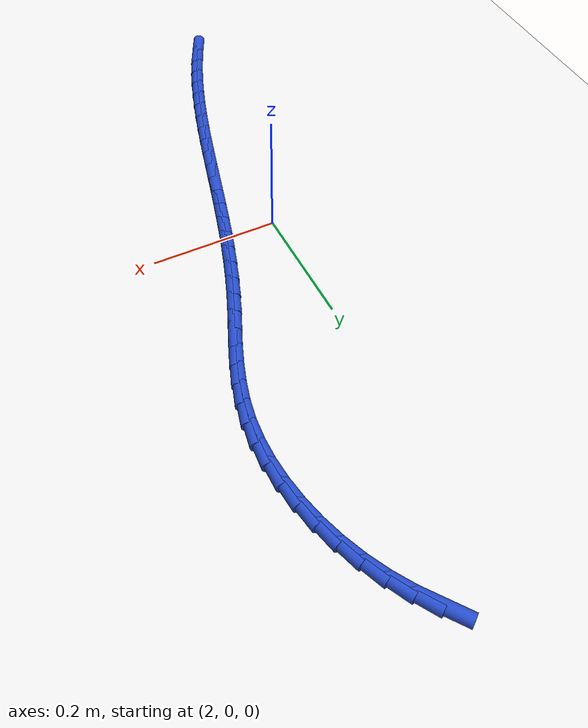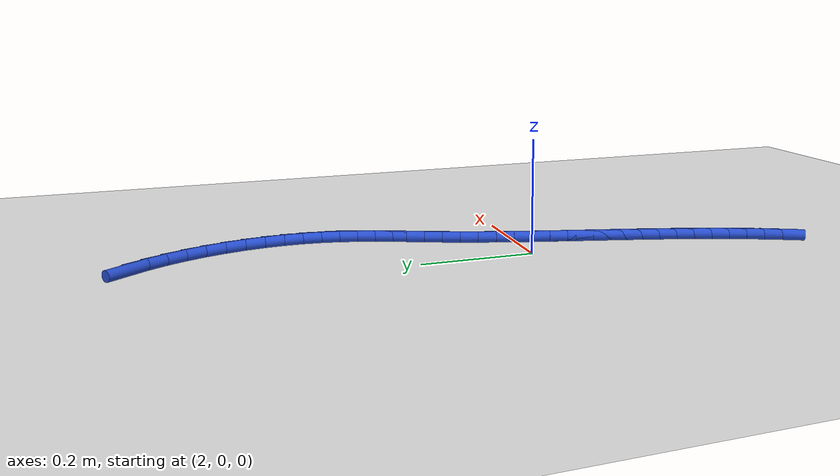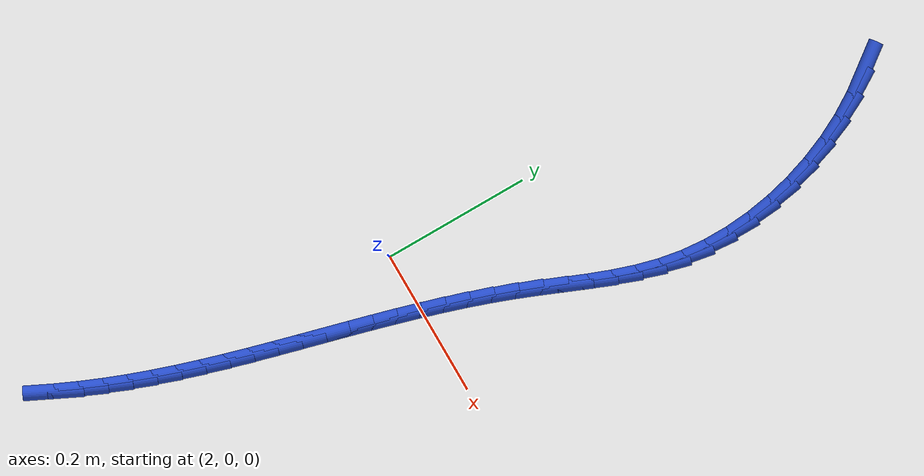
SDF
<sdf version="1.6">
 <world name="default">
  <model name="ground_plane">
   <static>1</static>
   <link name="link">
    <collision name="collision">
     <geometry><plane><normal>0 0 1</normal><size>100 100</size></plane></geometry>
     <surface><friction><ode><mu>100</mu><mu2>50</mu2></ode></friction></surface>
    </collision>
    <visual name="visual">
     <cast_shadows>0</cast_shadows>
     <geometry><plane><normal>0 0 1</normal><size>100 100</size></plane></geometry>
     <material>
      <script><uri>file://media/materials/scripts/gazebo.material</uri><name>Gazebo/WhiteGlow</name></script>
     </material>
    </visual>
   </link>
  </model>
  <model name="line">
   <link name="link_93">
    <pose>2.099813220663158 0.6564636988015781 0.01 0 1.57 -0.9283039802490364</pose>
    <collision name="collision">
     <geometry><cylinder><radius>0.01</radius><length>0.08</length></cylinder></geometry>
    </collision>
    <visual name="visual">
     <material>
      <script><name>Gazebo/Blue</name><uri>file://media/materials/scripts/gazebo.material</uri></script>
     </material>
     <geometry><cylinder><radius>0.01</radius><length>0.08</length></cylinder></geometry>
    </visual>
   </link>
   <link name="link_94">
    <pose>2.1205841479775804 0.6287108480644846 0.01 0 1.57 -1.0168318100427638</pose>
    <collision name="collision">
     <geometry><cylinder><radius>0.01</radius><length>0.08</length></cylinder></geometry>
    </collision>
    <visual name="visual">
     <material>
      <script><name>Gazebo/Blue</name><uri>file://media/materials/scripts/gazebo.material</uri></script>
     </material>
     <geometry><cylinder><radius>0.01</radius><length>0.08</length></cylinder></geometry>
    </visual>
   </link>
   <link name="link_95">
    <pose>2.1389746376276713 0.598980354459978 0.01 0 1.57 -1.1005065122981406</pose>
    <collision name="collision">
     <geometry><cylinder><radius>0.01</radius><length>0.08</length></cylinder></geometry>
    </collision>
    <visual name="visual">
     <material>
      <script><name>Gazebo/Blue</name><uri>file://media/materials/scripts/gazebo.material</uri></script>
     </material>
     <geometry><cylinder><radius>0.01</radius><length>0.08</length></cylinder></geometry>
    </visual>
   </link>
   <link name="link_96">
    <pose>2.1549195473000826 0.5676131470425247 0.01 0 1.57 -1.1805893380212211</pose>
    <collision name="collision">
     <geometry><cylinder><radius>0.01</radius><length>0.08</length></cylinder></geometry>
    </collision>
    <visual name="visual">
     <material>
      <script><name>Gazebo/Blue</name><uri>file://media/materials/scripts/gazebo.material</uri></script>
     </material>
     <geometry><cylinder><radius>0.01</radius><length>0.08</length></cylinder></geometry>
    </visual>
   </link>
   <link name="link_97">
    <pose>2.168353734681465 0.5349501548665897 0.01 0 1.57 -1.2583809423148702</pose>
    <collision name="collision">
     <geometry><cylinder><radius>0.01</radius><length>0.08</length></cylinder></geometry>
    </collision>
    <visual name="visual">
     <material>
      <script><name>Gazebo/Blue</name><uri>file://media/materials/scripts/gazebo.material</uri></script>
     </material>
     <geometry><cylinder><radius>0.01</radius><length>0.08</length></cylinder></geometry>
    </visual>
   </link>
   <link name="link_98">
    <pose>2.179212057458472 0.501332306986639 0.01 0 1.57 -1.3352046668272075</pose>
    <collision name="collision">
     <geometry><cylinder><radius>0.01</radius><length>0.08</length></cylinder></geometry>
    </collision>
    <visual name="visual">
     <material>
      <script><name>Gazebo/Blue</name><uri>file://media/materials/scripts/gazebo.material</uri></script>
     </material>
     <geometry><cylinder><radius>0.01</radius><length>0.08</length></cylinder></geometry>
    </visual>
   </link>
   <link name="link_99">
    <pose>2.1874293733177534 0.46710053245713856 0.01 0 1.57 -1.412412266777299</pose>
    <collision name="collision">
     <geometry><cylinder><radius>0.01</radius><length>0.08</length></cylinder></geometry>
    </collision>
    <visual name="visual">
     <material>
      <script><name>Gazebo/Blue</name><uri>file://media/materials/scripts/gazebo.material</uri></script>
     </material>
     <geometry><cylinder><radius>0.01</radius><length>0.08</length></cylinder></geometry>
    </visual>
   </link>
   <link name="link_100">
    <pose>2.1929405399459627 0.4325957603325537 0.01 0 1.57 -1.491401248606286</pose>
    <collision name="collision">
     <geometry><cylinder><radius>0.01</radius><length>0.08</length></cylinder></geometry>
    </collision>
    <visual name="visual">
     <material>
      <script><name>Gazebo/Blue</name><uri>file://media/materials/scripts/gazebo.material</uri></script>
     </material>
     <geometry><cylinder><radius>0.01</radius><length>0.08</length></cylinder></geometry>
    </visual>
   </link>
   <link name="link_101">
    <pose>2.1956804150297504 0.3981589196673509 0.01 0 1.57 1.5679587056846838</pose>
    <collision name="collision">
     <geometry><cylinder><radius>0.01</radius><length>0.08</length></cylinder></geometry>
    </collision>
    <visual name="visual">
     <material>
      <script><name>Gazebo/Blue</name><uri>file://media/materials/scripts/gazebo.material</uri></script>
     </material>
     <geometry><cylinder><radius>0.01</radius><length>0.08</length></cylinder></geometry>
    </visual>
   </link>
   <link name="link_102">
    <pose>2.195583856255768 0.36413093951599507 0.01 0 1.57 1.4809458135528857</pose>
    <collision name="collision">
     <geometry><cylinder><radius>0.01</radius><length>0.08</length></cylinder></geometry>
    </collision>
    <visual name="visual">
     <material>
      <script><name>Gazebo/Blue</name><uri>file://media/materials/scripts/gazebo.material</uri></script>
     </material>
     <geometry><cylinder><radius>0.01</radius><length>0.08</length></cylinder></geometry>
    </visual>
   </link>
   <link name="link_103">
    <pose>2.1925857213106683 0.33085274893295286 0.01 0 1.57 1.3901994215264952</pose>
    <collision name="collision">
     <geometry><cylinder><radius>0.01</radius><length>0.08</length></cylinder></geometry>
    </collision>
    <visual name="visual">
     <material>
      <script><name>Gazebo/Blue</name><uri>file://media/materials/scripts/gazebo.material</uri></script>
     </material>
     <geometry><cylinder><radius>0.01</radius><length>0.08</length></cylinder></geometry>
    </visual>
   </link>
   <link name="link_104">
    <pose>2.186696672567134 0.29859923473459865 0.01 0 1.57 1.310290352429788</pose>
    <collision name="collision">
     <geometry><cylinder><radius>0.01</radius><length>0.08</length></cylinder></geometry>
    </collision>
    <visual name="visual">
     <material>
      <script><name>Gazebo/Blue</name><uri>file://media/materials/scripts/gazebo.material</uri></script>
     </material>
     <geometry><cylinder><radius>0.01</radius><length>0.08</length></cylinder></geometry>
    </visual>
   </link>
   <link name="link_105">
    <pose>2.1783478361943542 0.26727896904608245 0.01 0 1.57 1.2481353368169867</pose>
    <collision name="collision">
     <geometry><cylinder><radius>0.01</radius><length>0.08</length></cylinder></geometry>
    </collision>
    <visual name="visual">
     <material>
      <script><name>Gazebo/Blue</name><uri>file://media/materials/scripts/gazebo.material</uri></script>
     </material>
     <geometry><cylinder><radius>0.01</radius><length>0.08</length></cylinder></geometry>
    </visual>
   </link>
   <link name="link_106">
    <pose>2.1681152906126937 0.23667423930508916 0.01 0 1.57 1.2047683423622273</pose>
    <collision name="collision">
     <geometry><cylinder><radius>0.01</radius><length>0.08</length></cylinder></geometry>
    </collision>
    <visual name="visual">
     <material>
      <script><name>Gazebo/Blue</name><uri>file://media/materials/scripts/gazebo.material</uri></script>
     </material>
     <geometry><cylinder><radius>0.01</radius><length>0.08</length></cylinder></geometry>
    </visual>
   </link>
   <link name="link_107">
    <pose>2.1565752497859783 0.20656721486170168 0.01 0 1.57 1.1804887510033892</pose>
    <collision name="collision">
     <geometry><cylinder><radius>0.01</radius><length>0.08</length></cylinder></geometry>
    </collision>
    <visual name="visual">
     <material>
      <script><name>Gazebo/Blue</name><uri>file://media/materials/scripts/gazebo.material</uri></script>
     </material>
     <geometry><cylinder><radius>0.01</radius><length>0.08</length></cylinder></geometry>
    </visual>
   </link>
   <link name="link_108">
    <pose>2.144303927678038 0.1767400650660013 0.01 0 1.57 1.1753108715577743</pose>
    <collision name="collision">
     <geometry><cylinder><radius>0.01</radius><length>0.08</length></cylinder></geometry>
    </collision>
    <visual name="visual">
     <material>
      <script><name>Gazebo/Blue</name><uri>file://media/materials/scripts/gazebo.material</uri></script>
     </material>
     <geometry><cylinder><radius>0.01</radius><length>0.08</length></cylinder></geometry>
    </visual>
   </link>
   <link name="link_109">
    <pose>2.1318775382526978 0.1469749592680709 0.01 0 1.57 1.1891271190988817</pose>
    <collision name="collision">
     <geometry><cylinder><radius>0.01</radius><length>0.08</length></cylinder></geometry>
    </collision>
    <visual name="visual">
     <material>
      <script><name>Gazebo/Blue</name><uri>file://media/materials/scripts/gazebo.material</uri></script>
     </material>
     <geometry><cylinder><radius>0.01</radius><length>0.08</length></cylinder></geometry>
    </visual>
   </link>
   <link name="link_110">
    <pose>2.119869263227545 0.11705521432632587 0.01 0 1.57 1.2141866566541757</pose>
    <collision name="collision">
     <geometry><cylinder><radius>0.01</radius><length>0.08</length></cylinder></geometry>
    </collision>
    <visual name="visual">
     <material>
      <script><name>Gazebo/Blue</name><uri>file://media/materials/scripts/gazebo.material</uri></script>
     </material>
     <geometry><cylinder><radius>0.01</radius><length>0.08</length></cylinder></geometry>
    </visual>
   </link>
   <link name="link_111">
    <pose>2.108617777832497 0.08685289257944283 0.01 0 1.57 1.2372945909144861</pose>
    <collision name="collision">
     <geometry><cylinder><radius>0.01</radius><length>0.08</length></cylinder></geometry>
    </collision>
    <visual name="visual">
     <material>
      <script><name>Gazebo/Blue</name><uri>file://media/materials/scripts/gazebo.material</uri></script>
     </material>
     <geometry><cylinder><radius>0.01</radius><length>0.08</length></cylinder></geometry>
    </visual>
   </link>
   <link name="link_112">
    <pose>2.0980643087737993 0.05639046482798024 0.01 0 1.57 1.25715606356229</pose>
    <collision name="collision">
     <geometry><cylinder><radius>0.01</radius><length>0.08</length></cylinder></geometry>
    </collision>
    <visual name="visual">
     <material>
      <script><name>Gazebo/Blue</name><uri>file://media/materials/scripts/gazebo.material</uri></script>
     </material>
     <geometry><cylinder><radius>0.01</radius><length>0.08</length></cylinder></geometry>
    </visual>
   </link>
   <link name="link_113">
    <pose>2.08811159085353 0.025704968559139348 0.01 0 1.57 1.2737687083197369</pose>
    <collision name="collision">
     <geometry><cylinder><radius>0.01</radius><length>0.08</length></cylinder></geometry>
    </collision>
    <visual name="visual">
     <material>
      <script><name>Gazebo/Blue</name><uri>file://media/materials/scripts/gazebo.material</uri></script>
     </material>
     <geometry><cylinder><radius>0.01</radius><length>0.08</length></cylinder></geometry>
    </visual>
   </link>
   <link name="link_114">
    <pose>2.078662358873767 -0.005166558739879327 0.01 0 1.57 1.287140094643162</pose>
    <collision name="collision">
     <geometry><cylinder><radius>0.01</radius><length>0.08</length></cylinder></geometry>
    </collision>
    <visual name="visual">
     <material>
      <script><name>Gazebo/Blue</name><uri>file://media/materials/scripts/gazebo.material</uri></script>
     </material>
     <geometry><cylinder><radius>0.01</radius><length>0.08</length></cylinder></geometry>
    </visual>
   </link>
   <link name="link_115">
    <pose>2.0696193476365896 -0.03618707958187303 0.01 0 1.57 1.2972824669571592</pose>
    <collision name="collision">
     <geometry><cylinder><radius>0.01</radius><length>0.08</length></cylinder></geometry>
    </collision>
    <visual name="visual">
     <material>
      <script><name>Gazebo/Blue</name><uri>file://media/materials/scripts/gazebo.material</uri></script>
     </material>
     <geometry><cylinder><radius>0.01</radius><length>0.08</length></cylinder></geometry>
    </visual>
   </link>
   <link name="link_116">
    <pose>2.0608852919440754 -0.06731955647964134 0.01 0 1.57 1.3042085505963958</pose>
    <collision name="collision">
     <geometry><cylinder><radius>0.01</radius><length>0.08</length></cylinder></geometry>
    </collision>
    <visual name="visual">
     <material>
      <script><name>Gazebo/Blue</name><uri>file://media/materials/scripts/gazebo.material</uri></script>
     </material>
     <geometry><cylinder><radius>0.01</radius><length>0.08</length></cylinder></geometry>
    </visual>
   </link>
   <link name="link_117">
    <pose>2.0523629265983017 -0.09852695194598288 0.01 0 1.57 1.3079284162302294</pose>
    <collision name="collision">
     <geometry><cylinder><radius>0.01</radius><length>0.08</length></cylinder></geometry>
    </collision>
    <visual name="visual">
     <material>
      <script><name>Gazebo/Blue</name><uri>file://media/materials/scripts/gazebo.material</uri></script>
     </material>
     <geometry><cylinder><radius>0.01</radius><length>0.08</length></cylinder></geometry>
    </visual>
   </link>
   <link name="link_118">
    <pose>2.043954986401348 -0.1297722284936972 0.01 0 1.57 1.3084473673366706</pose>
    <collision name="collision">
     <geometry><cylinder><radius>0.01</radius><length>0.08</length></cylinder></geometry>
    </collision>
    <visual name="visual">
     <material>
      <script><name>Gazebo/Blue</name><uri>file://media/materials/scripts/gazebo.material</uri></script>
     </material>
     <geometry><cylinder><radius>0.01</radius><length>0.08</length></cylinder></geometry>
    </visual>
   </link>
   <link name="link_119">
    <pose>2.03556420615529 -0.16101834863558157 0.01 0 1.57 1.305764813137171</pose>
    <collision name="collision">
     <geometry><cylinder><radius>0.01</radius><length>0.08</length></cylinder></geometry>
    </collision>
    <visual name="visual">
     <material>
      <script><name>Gazebo/Blue</name><uri>file://media/materials/scripts/gazebo.material</uri></script>
     </material>
     <geometry><cylinder><radius>0.01</radius><length>0.08</length></cylinder></geometry>
    </visual>
   </link>
   <link name="link_120">
    <pose>2.02709332066221 -0.19222827488443556 0.01 0 1.57 1.2998741036133181</pose>
    <collision name="collision">
     <geometry><cylinder><radius>0.01</radius><length>0.08</length></cylinder></geometry>
    </collision>
    <visual name="visual">
     <material>
      <script><name>Gazebo/Blue</name><uri>file://media/materials/scripts/gazebo.material</uri></script>
     </material>
     <geometry><cylinder><radius>0.01</radius><length>0.08</length></cylinder></geometry>
    </visual>
   </link>
   <link name="link_121">
    <pose>2.018445064724182 -0.22336496975305775 0.01 0 1.57 1.290763325962801</pose>
    <collision name="collision">
     <geometry><cylinder><radius>0.01</radius><length>0.08</length></cylinder></geometry>
    </collision>
    <visual name="visual">
     <material>
      <script><name>Gazebo/Blue</name><uri>file://media/materials/scripts/gazebo.material</uri></script>
     </material>
     <geometry><cylinder><radius>0.01</radius><length>0.08</length></cylinder></geometry>
    </visual>
   </link>
   <link name="link_122">
    <pose>2.0095221731432855 -0.2543913957542478 0.01 0 1.57 1.2784170858631227</pose>
    <collision name="collision">
     <geometry><cylinder><radius>0.01</radius><length>0.08</length></cylinder></geometry>
    </collision>
    <visual name="visual">
     <material>
      <script><name>Gazebo/Blue</name><uri>file://media/materials/scripts/gazebo.material</uri></script>
     </material>
     <geometry><cylinder><radius>0.01</radius><length>0.08</length></cylinder></geometry>
    </visual>
   </link>
   <link name="link_123">
    <pose>2.0002273807216 -0.28527051540080284 0.01 0 1.57 1.2628193150297091</pose>
    <collision name="collision">
     <geometry><cylinder><radius>0.01</radius><length>0.08</length></cylinder></geometry>
    </collision>
    <visual name="visual">
     <material>
      <script><name>Gazebo/Blue</name><uri>file://media/materials/scripts/gazebo.material</uri></script>
     </material>
     <geometry><cylinder><radius>0.01</radius><length>0.08</length></cylinder></geometry>
    </visual>
   </link>
   <link name="link_124">
    <pose>1.9904634222612017 -0.31596529120552236 0.01 0 1.57 1.2439571509742142</pose>
    <collision name="collision">
     <geometry><cylinder><radius>0.01</radius><length>0.08</length></cylinder></geometry>
    </collision>
    <visual name="visual">
     <material>
      <script><name>Gazebo/Blue</name><uri>file://media/materials/scripts/gazebo.material</uri></script>
     </material>
     <geometry><cylinder><radius>0.01</radius><length>0.08</length></cylinder></geometry>
    </visual>
   </link>
   <link name="link_125">
    <pose>1.98013303256417 -0.34643868568120517 0.01 0 1.57 1.2218259168391596</pose>
    <collision name="collision">
     <geometry><cylinder><radius>0.01</radius><length>0.08</length></cylinder></geometry>
    </collision>
    <visual name="visual">
     <material>
      <script><name>Gazebo/Blue</name><uri>file://media/materials/scripts/gazebo.material</uri></script>
     </material>
     <geometry><cylinder><radius>0.01</radius><length>0.08</length></cylinder></geometry>
    </visual>
   </link>
   <link name="link_126">
    <pose>1.969138946432582 -0.37665366134065076 0.01 0 1.57 1.1967864935208867</pose>
    <collision name="collision">
     <geometry><cylinder><radius>0.01</radius><length>0.08</length></cylinder></geometry>
    </collision>
    <visual name="visual">
     <material>
      <script><name>Gazebo/Blue</name><uri>file://media/materials/scripts/gazebo.material</uri></script>
     </material>
     <geometry><cylinder><radius>0.01</radius><length>0.08</length></cylinder></geometry>
    </visual>
   </link>
   <link name="link_127">
    <pose>1.957394771101776 -0.4065763899230688 0.01 0 1.57 1.1705420596668468</pose>
    <collision name="collision">
     <geometry><cylinder><radius>0.01</radius><length>0.08</length></cylinder></geometry>
    </collision>
    <visual name="visual">
     <material>
      <script><name>Gazebo/Blue</name><uri>file://media/materials/scripts/gazebo.material</uri></script>
     </material>
     <geometry><cylinder><radius>0.01</radius><length>0.08</length></cylinder></geometry>
    </visual>
   </link>
   <link name="link_128">
    <pose>1.9448661381494243 -0.4361883992420227 0.01 0 1.57 1.1436183159690418</pose>
    <collision name="collision">
     <geometry><cylinder><radius>0.01</radius><length>0.08</length></cylinder></geometry>
    </collision>
    <visual name="visual">
     <material>
      <script><name>Gazebo/Blue</name><uri>file://media/materials/scripts/gazebo.material</uri></script>
     </material>
     <geometry><cylinder><radius>0.01</radius><length>0.08</length></cylinder></geometry>
    </visual>
   </link>
   <link name="link_129">
    <pose>1.931534221713573 -0.4654758048233264 0.01 0 1.57 1.1160430789835514</pose>
    <collision name="collision">
     <geometry><cylinder><radius>0.01</radius><length>0.08</length></cylinder></geometry>
    </collision>
    <visual name="visual">
     <material>
      <script><name>Gazebo/Blue</name><uri>file://media/materials/scripts/gazebo.material</uri></script>
     </material>
     <geometry><cylinder><radius>0.01</radius><length>0.08</length></cylinder></geometry>
    </visual>
   </link>
  </model>
 </world>
</sdf>
